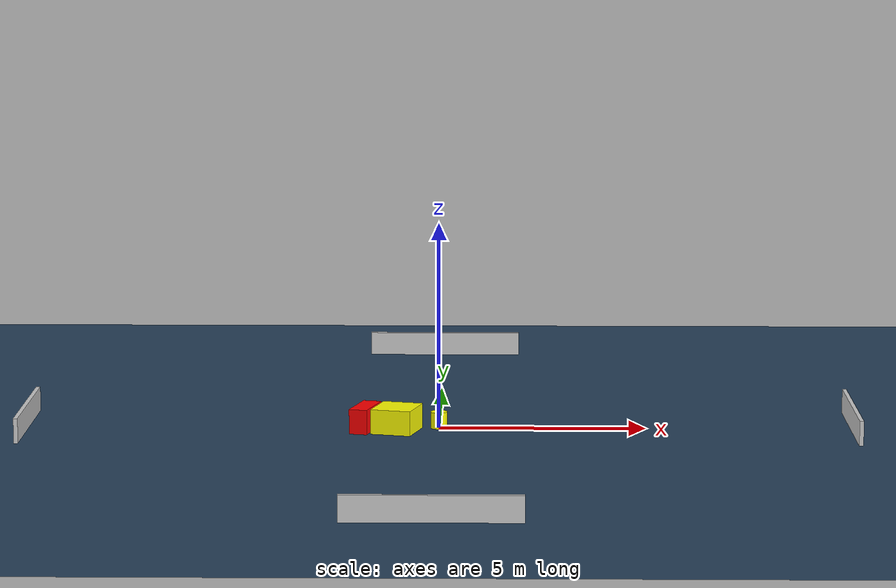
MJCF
<?xml version="1.0" ?>
<mujoco model="generated_environment">
  <option timestep="0.01" integrator="RK4" cone="elliptic"/>
  <default>
    <geom density="1"/>
  </default>
  <asset>
    <texture builtin="gradient" height="3072" name="skybox" rgb1="0.3 0.5 0.7" rgb2="0 0 0" type="skybox" width="512"/>
    <texture builtin="checker" height="300" name="groundplane" rgb1="0.2 0.3 0.4" rgb2="0.1 0.2 0.3" type="2d" width="300"/>
    <material name="groundplane" reflectance="0.2" texrepeat="5 5" texture="groundplane"/>
  </asset>
  <worldbody>
    <light dir="0 0 -1" directional="true" pos="0 0 1.5"/>
    <geom condim="3" friction="0.5 0.005 0.001" material="groundplane" name="floor" pos="0 0 0" size="0 0 0.05" type="plane"/>
    <body name="walls">
      <geom name="wall_1" condim="4" pos="-10.0 0.0 0.3" rgba="0.800000011920929 0.800000011920929 0.800000011920929 1.0" size="0.05 2.0 0.3" type="box"/>
      <geom name="wall_2" condim="4" pos="10.0 0.0 0.3" rgba="0.800000011920929 0.800000011920929 0.800000011920929 1.0" size="0.05 2.0 0.3" type="box"/>
      <geom name="wall_3" condim="4" pos="0.0 -10.0 0.3" rgba="0.800000011920929 0.800000011920929 0.800000011920929 1.0" size="2.0 0.05 0.3" type="box"/>
      <geom name="wall_4" condim="4" pos="0.0 10.0 0.3" rgba="0.800000011920929 0.800000011920929 0.800000011920929 1.0" size="2.0 0.05 0.3" type="box"/>
    </body>
    <body name="robot">
      <joint name="joint_x" type="slide" pos="0 0 0" axis="1 0 0"/>
      <joint name="joint_y" type="slide" pos="0 0 0" axis="0 1 0"/>
      <geom name="robot" type="cylinder" pos="0.0 0.0 0.2" size="0.2 0.2 0.0" mass="5.0" friction="1.0 0.005 0.0001" condim="4" rgba="1.0 1.0 0.0 1.0"/>
    </body>
    <body name="obstacle_1_movable">
      <geom name="obstacle_1_movable" condim="4" pos="-1.0152585159581018 -0.3713269092123308 0.3" euler="0 0 255.0534256222711" friction="0.0 0.005 0.001" rgba="1.0 1.0 0.0 1.0" size="0.5491076202363283 0.4923945841828074 0.3" type="box" mass="0.1"/>
      <joint type="free"/>
    </body>
    <body name="obstacle_2_static">
      <geom name="obstacle_2_static" condim="4" pos="-1.7803028337876583 -0.24584106251034946 0.3" euler="0 0 74.76165227163327" friction="0.0 0.005 0.001" rgba="1.0 0.0 0.0 1.0" size="0.5983462176978613 0.221275201630479 0.3" type="box"/>
    </body>
  </worldbody>
  <actuator>
    <motor name="actuator_x" joint="joint_x" gear="1" ctrlrange="-1 1"/>
    <motor name="actuator_y" joint="joint_y" gear="1" ctrlrange="-1 1"/>
  </actuator>
</mujoco>
